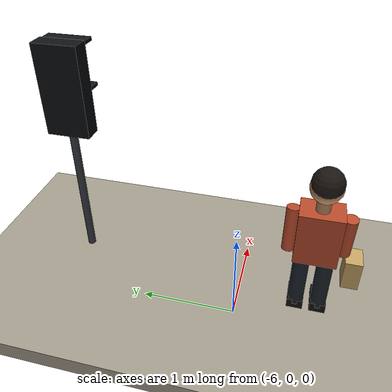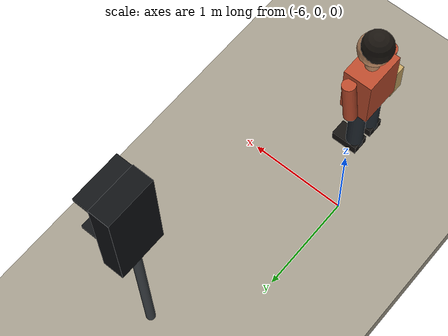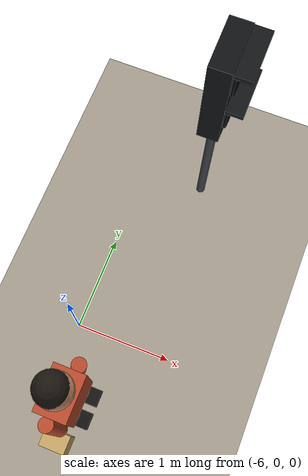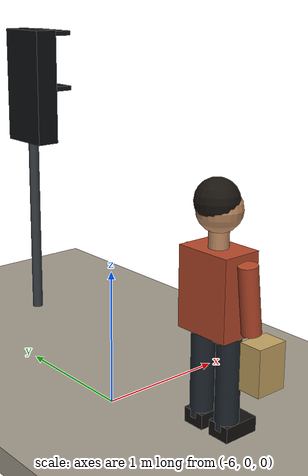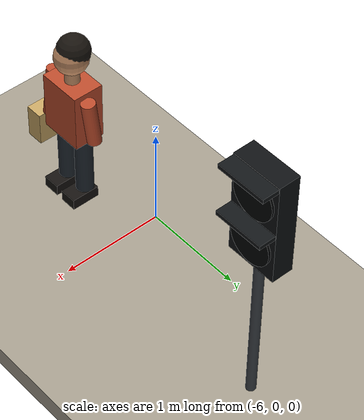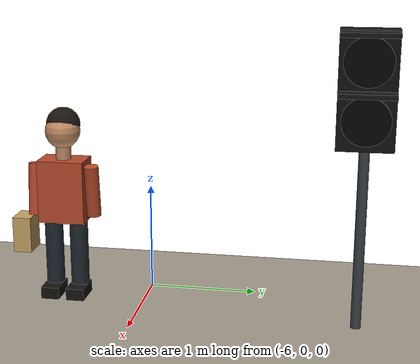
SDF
<sdf version="1.10">
 <world name="swan_town">
  <model name="ground_plane">
   <pose>-14 30 -0.025 0 0 0</pose>
   <static>true</static>
   <link name="link">
    <collision name="collision">
     <geometry><plane><normal>0 0 1</normal><size>100 100</size></plane></geometry>
    </collision>
    <visual name="visual">
     <geometry><plane><normal>0 0 1</normal><size>100 100</size></plane></geometry>
     <material><ambient>0.3 0.5 0.2 1</ambient><diffuse>0.3 0.5 0.2 1</diffuse></material>
    </visual>
   </link>
  </model>
  <model name="ground">
   <static>true</static>
   <pose>15 0 -0.1 0 0 0</pose>
   <link name="body">
    <collision name="box_collision"><geometry><box><size>46 24 0.2</size></box></geometry></collision>
    <visual name="box_visual">
     <geometry><box><size>46 24 0.2</size></box></geometry>
     <material><ambient>0.64 0.61 0.55 1</ambient><diffuse>0.64 0.61 0.55 1</diffuse></material>
    </visual>
   </link>
  </model>
  <model name="ped_signal_west_housing">
   <static>true</static>
   <pose>-5.35 1.95 0 0 0 1.5708</pose>
   <link name="body">
    <collision name="pole_collision">
     <pose>0 0 1.025 0 0 0</pose>
     <geometry><cylinder><radius>0.045</radius><length>2.05</length></cylinder></geometry>
    </collision>
    <visual name="pole_visual">
     <pose>0 0 1.025 0 0 0</pose>
     <geometry><cylinder><radius>0.045</radius><length>2.05</length></cylinder></geometry>
     <material><ambient>0.23 0.25 0.27 1</ambient><diffuse>0.23 0.25 0.27 1</diffuse></material>
    </visual>
    <collision name="housing_collision">
     <pose>0 0 2.08 0 0 0</pose>
     <geometry><box><size>0.48 0.2 0.99</size></box></geometry>
    </collision>
    <visual name="housing_visual">
     <pose>0 0 2.08 0 0 0</pose>
     <geometry><box><size>0.48 0.2 0.99</size></box></geometry>
     <material><ambient>0.055 0.065 0.075 1</ambient><diffuse>0.055 0.065 0.075 1</diffuse></material>
    </visual>
    <visual name="red_lens_visual">
     <pose>0 -0.113 2.32 1.5708 0 0</pose>
     <geometry><cylinder><radius>0.205</radius><length>0.022</length></cylinder></geometry>
     <material><ambient>0.013 0.018 0.022 1</ambient><diffuse>0.013 0.018 0.022 1</diffuse></material>
    </visual>
    <visual name="red_hood_visual">
     <pose>0 -0.13 2.545 0 0 0</pose>
     <geometry><box><size>0.47 0.25 0.04</size></box></geometry>
     <material><ambient>0.07 0.08 0.09 1</ambient><diffuse>0.07 0.08 0.09 1</diffuse></material>
    </visual>
    <visual name="green_lens_visual">
     <pose>0 -0.113 1.84 1.5708 0 0</pose>
     <geometry><cylinder><radius>0.205</radius><length>0.022</length></cylinder></geometry>
     <material><ambient>0.013 0.018 0.022 1</ambient><diffuse>0.013 0.018 0.022 1</diffuse></material>
    </visual>
    <visual name="green_hood_visual">
     <pose>0 -0.13 2.065 0 0 0</pose>
     <geometry><box><size>0.47 0.25 0.04</size></box></geometry>
     <material><ambient>0.07 0.08 0.09 1</ambient><diffuse>0.07 0.08 0.09 1</diffuse></material>
    </visual>
   </link>
  </model>
  <model name="crossing_pedestrian_1">
   <static>true</static>
   <pose>-5.7 -0.75 0 0 0 0</pose>
   <link name="body">
    <collision name="leg_-1_collision">
     <pose>0 -0.12 0.4 0 0 0</pose>
     <geometry><cylinder><radius>0.085</radius><length>0.68</length></cylinder></geometry>
    </collision>
    <visual name="leg_-1_visual">
     <pose>0 -0.12 0.4 0 0 0</pose>
     <geometry><cylinder><radius>0.085</radius><length>0.68</length></cylinder></geometry>
     <material><ambient>0.12 0.15 0.18 1</ambient><diffuse>0.12 0.15 0.18 1</diffuse></material>
    </visual>
    <collision name="shoe_-1_collision">
     <pose>0.06 -0.12 0.055 0 0 0</pose>
     <geometry><box><size>0.28 0.17 0.11</size></box></geometry>
    </collision>
    <visual name="shoe_-1_visual">
     <pose>0.06 -0.12 0.055 0 0 0</pose>
     <geometry><box><size>0.28 0.17 0.11</size></box></geometry>
     <material><ambient>0.08 0.07 0.06 1</ambient><diffuse>0.08 0.07 0.06 1</diffuse></material>
    </visual>
    <collision name="arm_-1_collision">
     <pose>0.02 -0.27 1.02 0 -0.12 0</pose>
     <geometry><cylinder><radius>0.068</radius><length>0.48</length></cylinder></geometry>
    </collision>
    <visual name="arm_-1_visual">
     <pose>0.02 -0.27 1.02 0 -0.12 0</pose>
     <geometry><cylinder><radius>0.068</radius><length>0.48</length></cylinder></geometry>
     <material><ambient>0.73 0.29 0.17 1</ambient><diffuse>0.73 0.29 0.17 1</diffuse></material>
    </visual>
    <collision name="leg_1_collision">
     <pose>0 0.12 0.4 0 0 0</pose>
     <geometry><cylinder><radius>0.085</radius><length>0.68</length></cylinder></geometry>
    </collision>
    <visual name="leg_1_visual">
     <pose>0 0.12 0.4 0 0 0</pose>
     <geometry><cylinder><radius>0.085</radius><length>0.68</length></cylinder></geometry>
     <material><ambient>0.12 0.15 0.18 1</ambient><diffuse>0.12 0.15 0.18 1</diffuse></material>
    </visual>
    <collision name="shoe_1_collision">
     <pose>0.06 0.12 0.055 0 0 0</pose>
     <geometry><box><size>0.28 0.17 0.11</size></box></geometry>
    </collision>
    <visual name="shoe_1_visual">
     <pose>0.06 0.12 0.055 0 0 0</pose>
     <geometry><box><size>0.28 0.17 0.11</size></box></geometry>
     <material><ambient>0.08 0.07 0.06 1</ambient><diffuse>0.08 0.07 0.06 1</diffuse></material>
    </visual>
    <collision name="arm_1_collision">
     <pose>0.02 0.27 1.02 0 0.12 0</pose>
     <geometry><cylinder><radius>0.068</radius><length>0.48</length></cylinder></geometry>
    </collision>
    <visual name="arm_1_visual">
     <pose>0.02 0.27 1.02 0 0.12 0</pose>
     <geometry><cylinder><radius>0.068</radius><length>0.48</length></cylinder></geometry>
     <material><ambient>0.73 0.29 0.17 1</ambient><diffuse>0.73 0.29 0.17 1</diffuse></material>
    </visual>
    <collision name="torso_collision">
     <pose>0 0 1.02 0 0 0</pose>
     <geometry><box><size>0.3 0.43 0.58</size></box></geometry>
    </collision>
    <visual name="torso_visual">
     <pose>0 0 1.02 0 0 0</pose>
     <geometry><box><size>0.3 0.43 0.58</size></box></geometry>
     <material><ambient>0.73 0.29 0.17 1</ambient><diffuse>0.73 0.29 0.17 1</diffuse></material>
    </visual>
    <visual name="neck_visual">
     <pose>0 0 1.37 0 0 0</pose>
     <geometry><cylinder><radius>0.07</radius><length>0.13</length></cylinder></geometry>
     <material><ambient>0.77 0.56 0.4 1</ambient><diffuse>0.77 0.56 0.4 1</diffuse></material>
    </visual>
    <collision name="head_collision">
     <pose>0 0 1.57 0 0 0</pose>
     <geometry><sphere><radius>0.16</radius></sphere></geometry>
    </collision>
    <visual name="head_visual">
     <pose>0 0 1.57 0 0 0</pose>
     <geometry><sphere><radius>0.16</radius></sphere></geometry>
     <material><ambient>0.77 0.56 0.4 1</ambient><diffuse>0.77 0.56 0.4 1</diffuse></material>
    </visual>
    <visual name="hair_visual">
     <pose>-0.025 0 1.63 0 0 0</pose>
     <geometry><sphere><radius>0.155</radius></sphere></geometry>
     <material><ambient>0.1 0.08 0.06 1</ambient><diffuse>0.1 0.08 0.06 1</diffuse></material>
    </visual>
    <collision name="shopping_bag_collision">
     <pose>0.04 -0.38 0.6 0 0 0</pose>
     <geometry><box><size>0.24 0.17 0.33</size></box></geometry>
    </collision>
    <visual name="shopping_bag_visual">
     <pose>0.04 -0.38 0.6 0 0 0</pose>
     <geometry><box><size>0.24 0.17 0.33</size></box></geometry>
     <material><ambient>0.78 0.65 0.39 1</ambient><diffuse>0.78 0.65 0.39 1</diffuse></material>
    </visual>
   </link>
  </model>
 </world>
</sdf>
